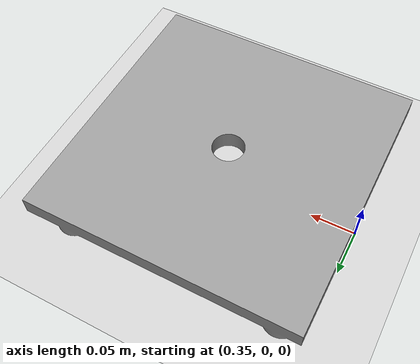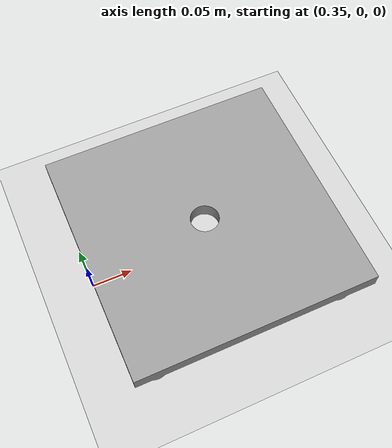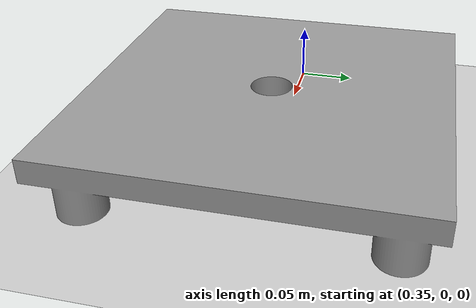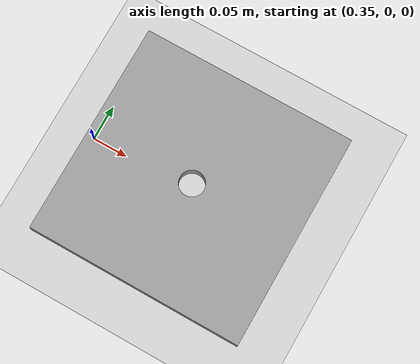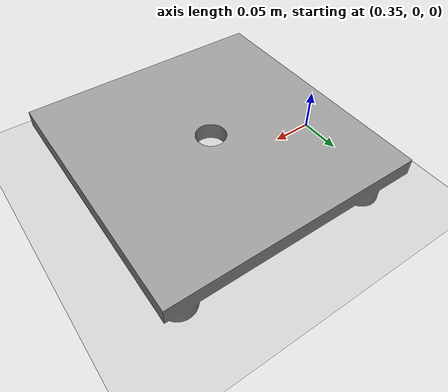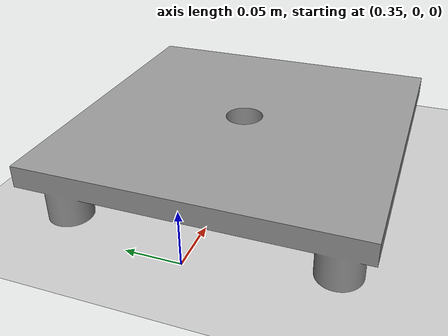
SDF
<?xml version="1.0" ?>
<sdf version="1.4">
  <!-- We use a custom world for the rrbot so that the camera angle is launched correctly -->

  <world name="default">
    <include>
      <uri>model://ground_plane</uri>
    </include>

    <gravity>0 0 -9.8</gravity>

    <!-- Global light source -->
    <include>
      <uri>model://sun</uri>
    </include>

    <include>
        <name>table_with_hole</name>
        <uri>model://find_hole/gazebo/table_with_hole</uri>
        <pose>0.5 0.0 0.0 0 0 0</pose>
    </include>

    <!-- Focus camera on tall pendulum -->
    <gui fullscreen='0'>
      <camera name='user_camera'>
        <pose>4.927360 -4.376610 3.740080 0.000000 0.275643 2.356190</pose>
        <view_controller>orbit</view_controller>
      </camera>
    </gui>

  </world>
</sdf>

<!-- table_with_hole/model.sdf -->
<sdf version='1.7'>
  <model name='table_with_hole'>
    <link name='link_1'>
      <inertial>
        <mass>7.62604</mass>
        <inertia>
          <ixx>0.064118</ixx>
          <ixy>0</ixy>
          <ixz>0</ixz>
          <iyy>0.064118</iyy>
          <iyz>0</iyz>
          <izz>0.126322</izz>
        </inertia>
        <pose>0 0 0 0 -0 0</pose>
      </inertial>
      <pose>0 0 0 0 -0 0</pose>
      <gravity>1</gravity>
      <self_collide>0</self_collide>
      <kinematic>0</kinematic>
      <enable_wind>0</enable_wind>
      <visual name='visual'>
        <pose>0 0 0 0 -0 0</pose>
        <geometry>
          <mesh>
            <uri>model://find_hole/gazebo/table_with_hole/meshes/table_with_hole.stl</uri>
            <scale>1 1 1</scale>
          </mesh>
        </geometry>
        <material>
          <lighting>1</lighting>
          <script>
            <uri>file://media/materials/scripts/gazebo.material</uri>
            <name>Gazebo/Grey</name>
          </script>
          <shader type='pixel'>
            <normal_map>__default__</normal_map>
          </shader>
        </material>
        <transparency>0</transparency>
        <cast_shadows>1</cast_shadows>
      </visual>
      <collision name='collision'>
        <laser_retro>0</laser_retro>
        <max_contacts>10</max_contacts>
        <pose>0 0 0 0 -0 0</pose>
        <geometry>
          <mesh>
            <uri>model://find_hole/gazebo/table_with_hole/meshes/table_with_hole.stl</uri>
            <scale>1 1 1</scale>
          </mesh>
        </geometry>
        <surface>
          <friction>
            <ode>
              <mu>1</mu>
              <mu2>1</mu2>
              <fdir1>0 0 0</fdir1>
              <slip1>0</slip1>
              <slip2>0</slip2>
            </ode>
            <torsional>
              <coefficient>1</coefficient>
              <patch_radius>0</patch_radius>
              <surface_radius>0</surface_radius>
              <use_patch_radius>1</use_patch_radius>
              <ode>
                <slip>0</slip>
              </ode>
            </torsional>
          </friction>
          <bounce>
            <restitution_coefficient>0</restitution_coefficient>
            <threshold>1e+06</threshold>
          </bounce>
          <contact>
            <collide_without_contact>0</collide_without_contact>
            <collide_without_contact_bitmask>1</collide_without_contact_bitmask>
            <collide_bitmask>1</collide_bitmask>
            <ode>
              <soft_cfm>0</soft_cfm>
              <soft_erp>0.2</soft_erp>
              <kp>1e+13</kp>
              <kd>1</kd>
              <max_vel>0.01</max_vel>
              <min_depth>0</min_depth>
            </ode>
            <bullet>
              <split_impulse>1</split_impulse>
              <split_impulse_penetration_threshold>-0.01</split_impulse_penetration_threshold>
              <soft_cfm>0</soft_cfm>
              <soft_erp>0.2</soft_erp>
              <kp>1e+13</kp>
              <kd>1</kd>
            </bullet>
          </contact>
        </surface>
      </collision>
    </link>
    <static>1</static>
    <allow_auto_disable>1</allow_auto_disable>
  </model>
</sdf>
